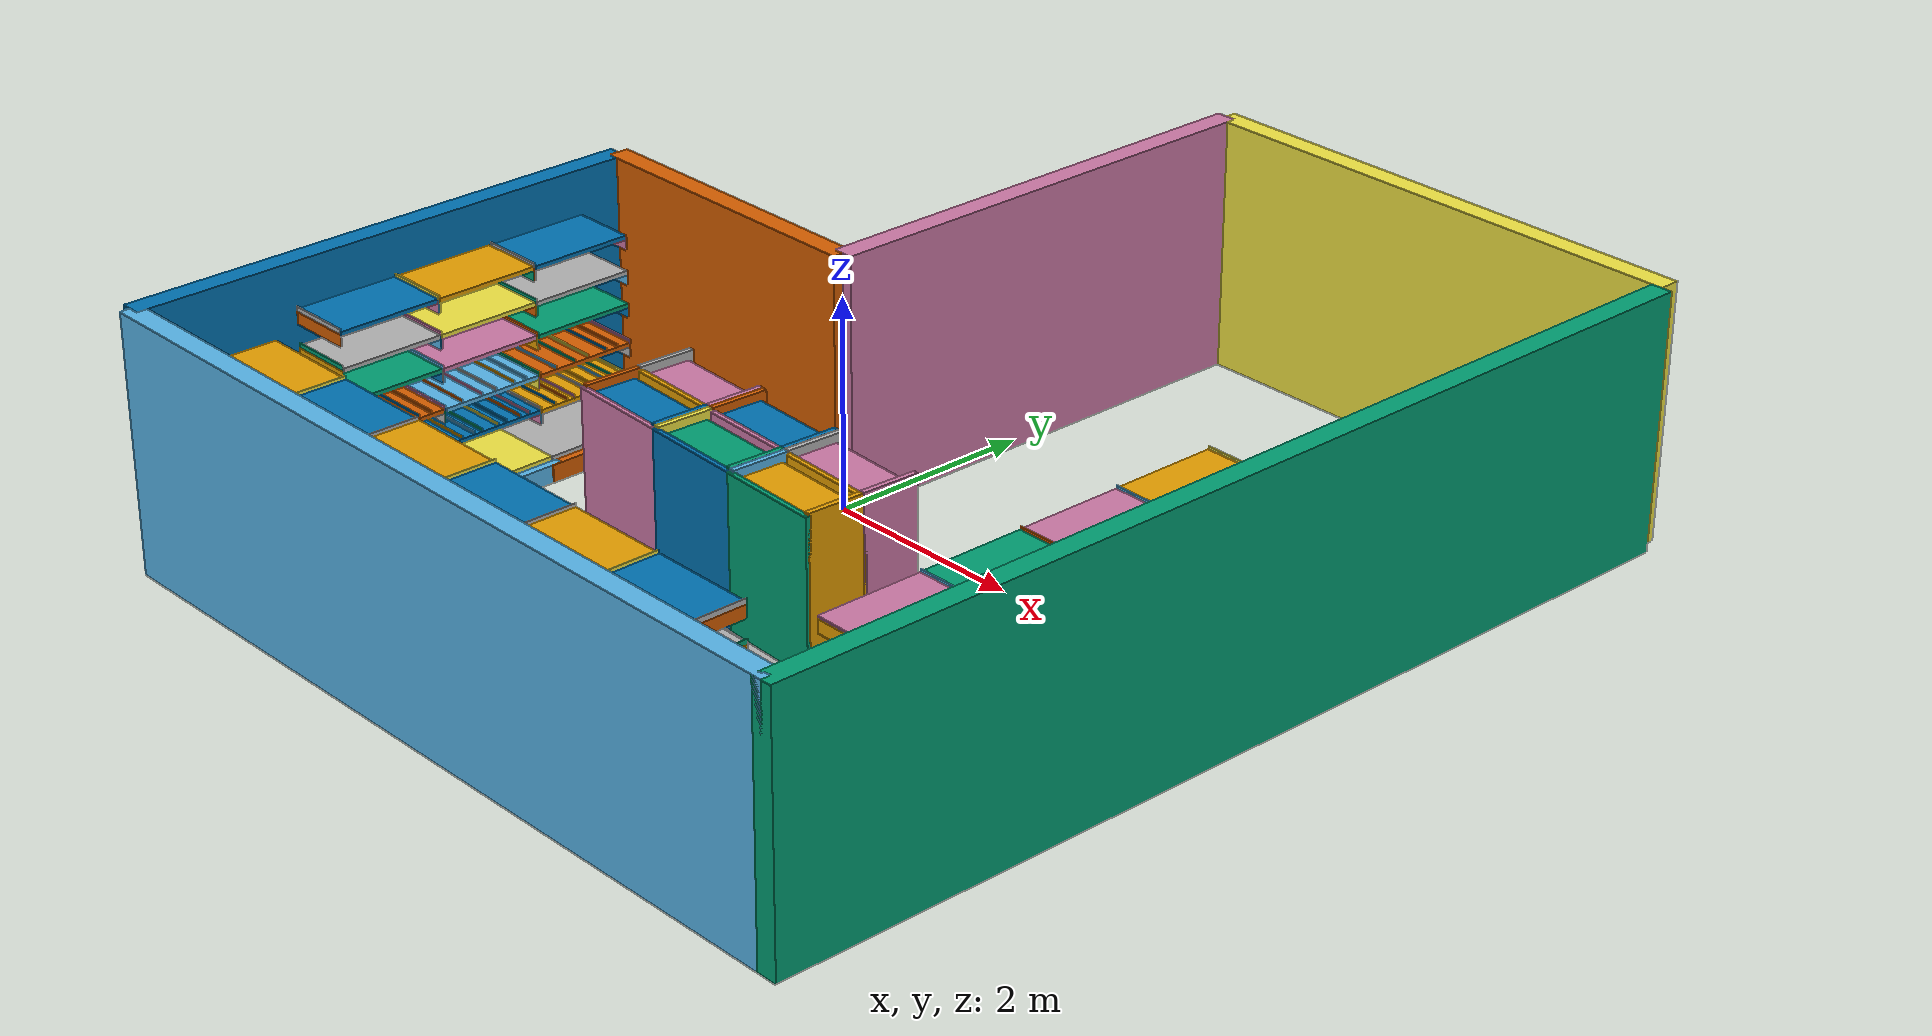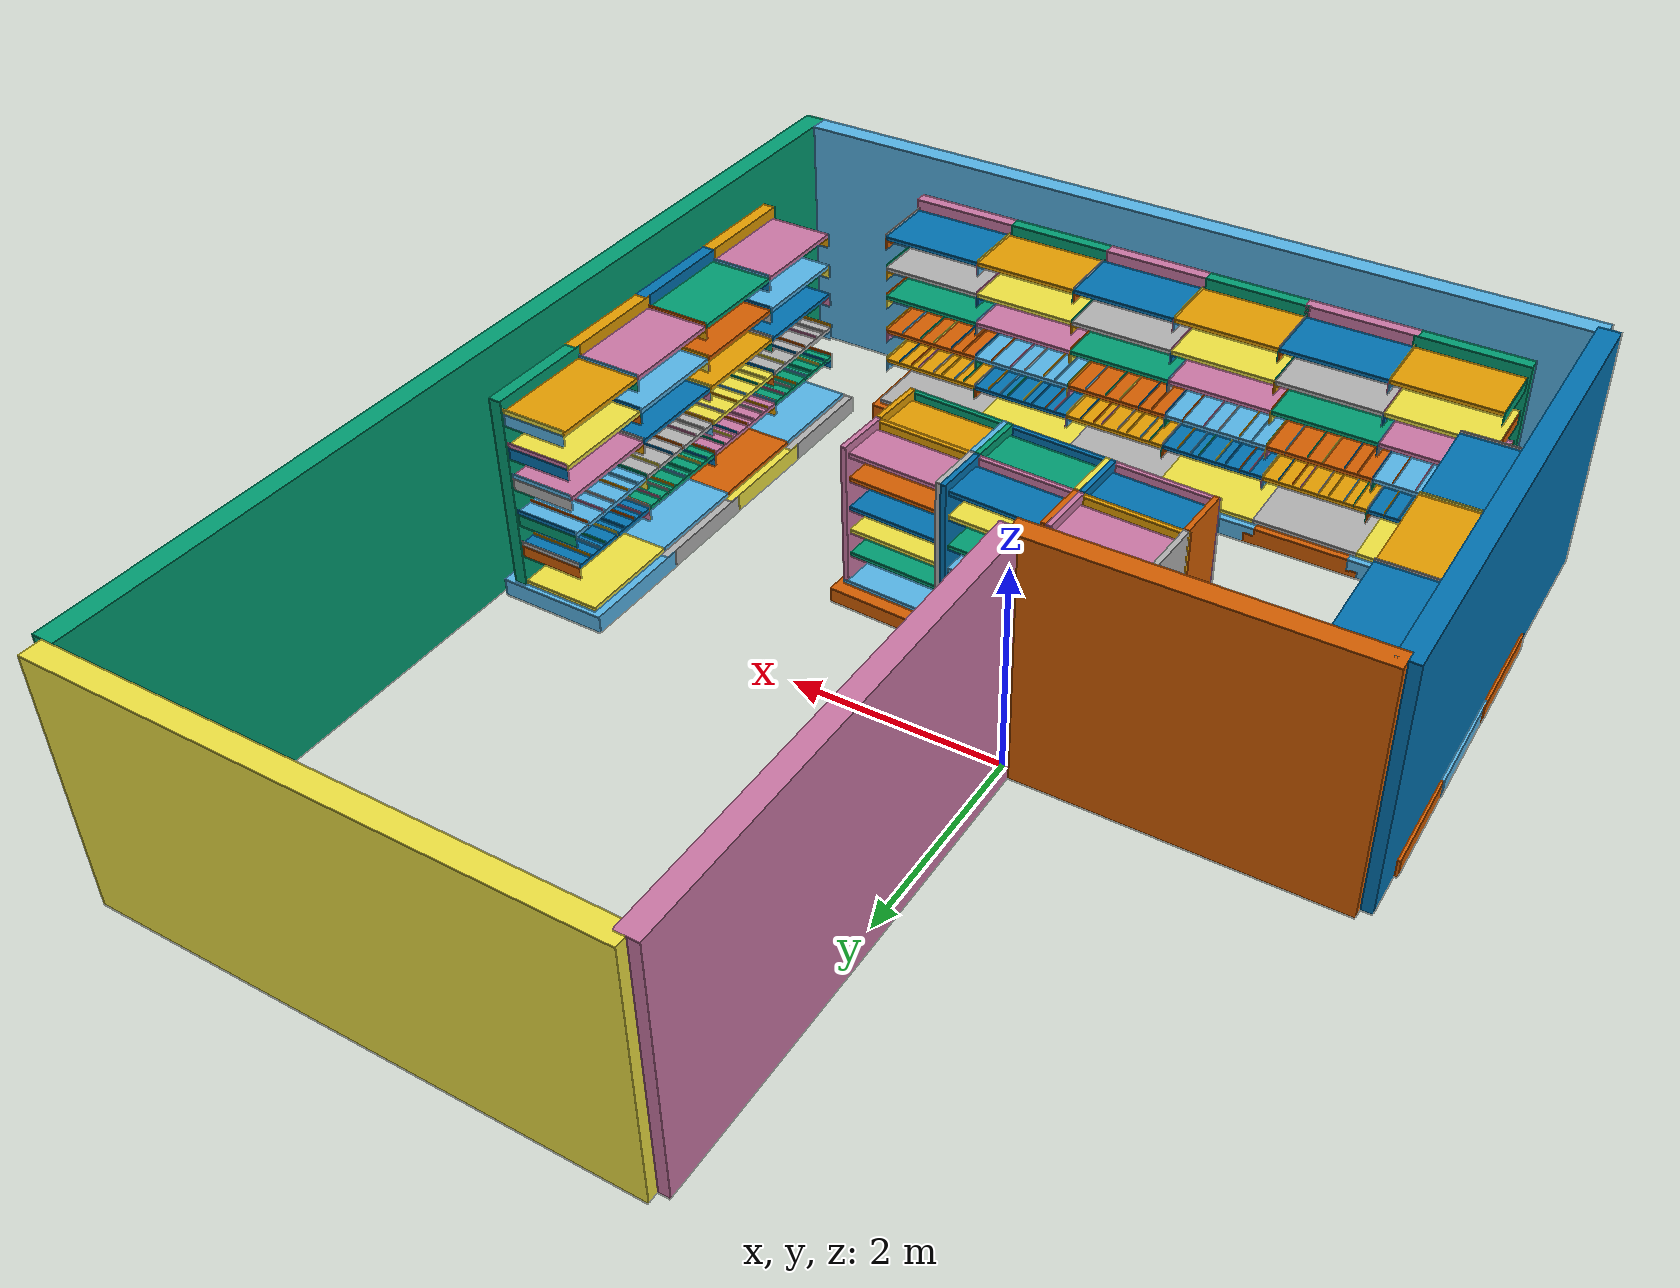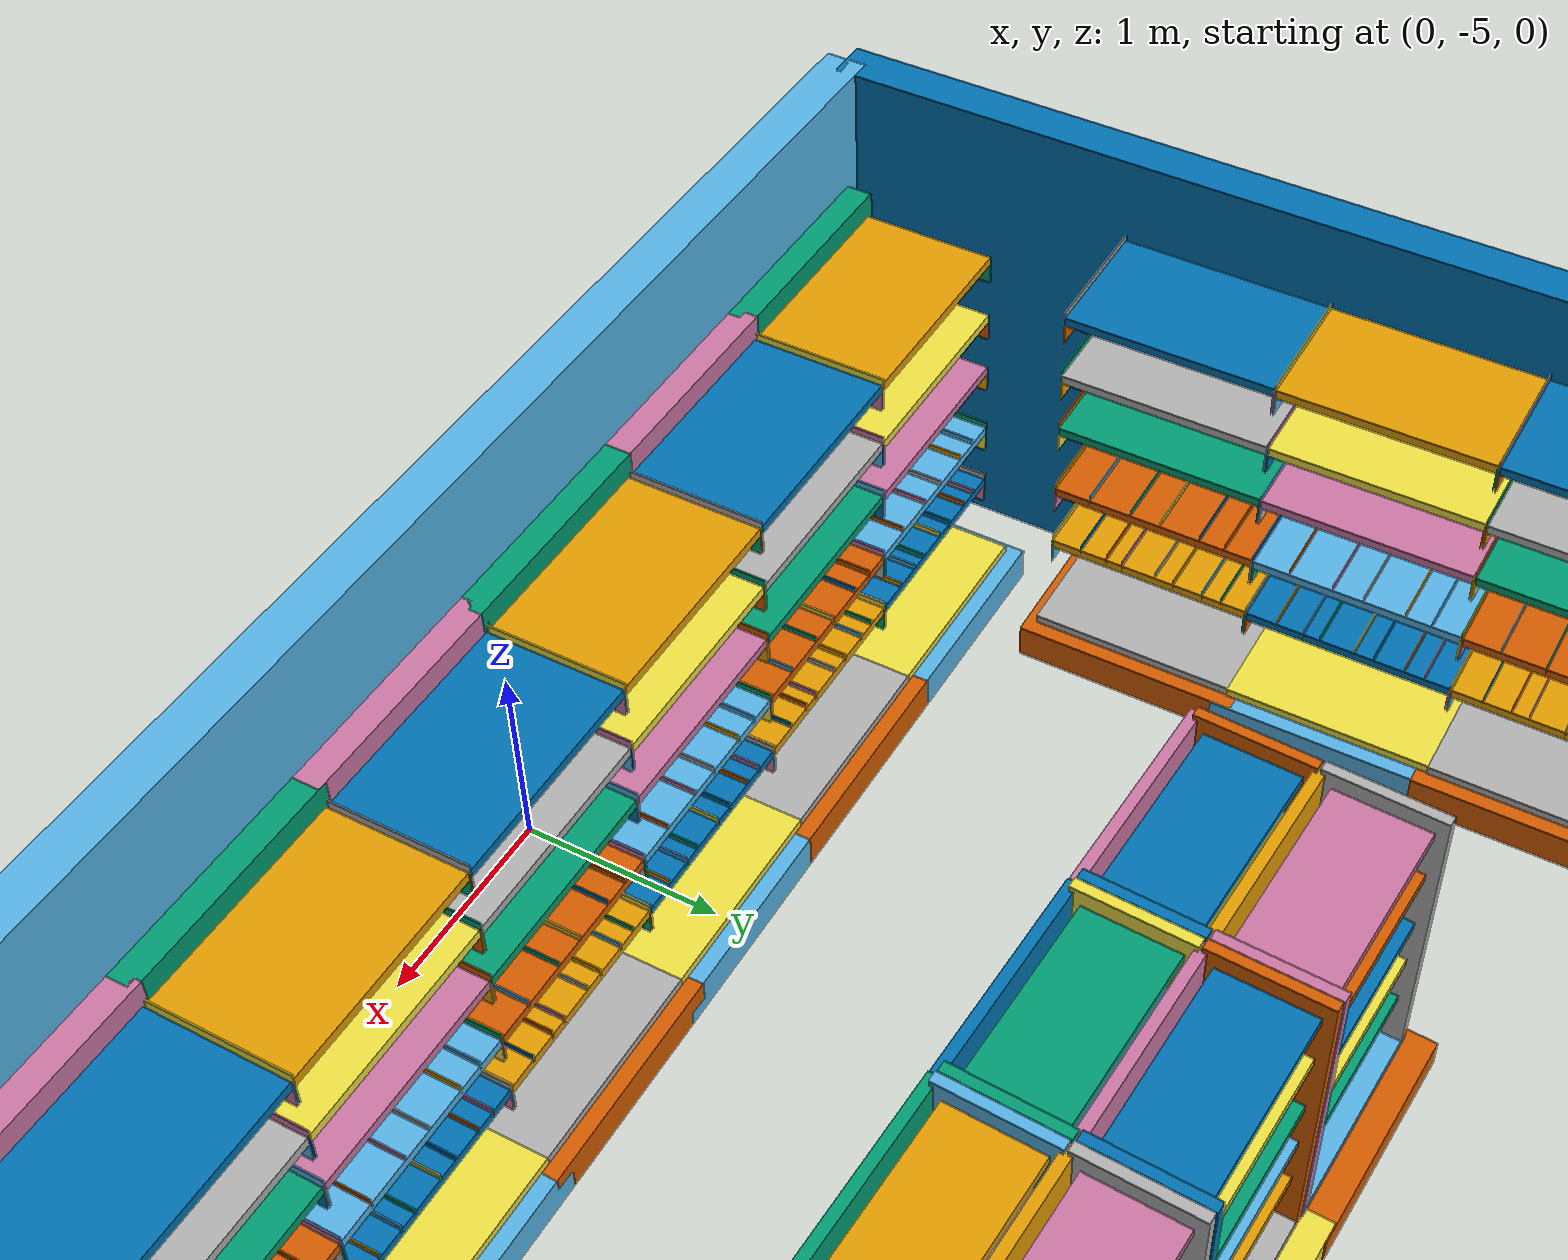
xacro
<?xml version="1.0"?>
<robot name="dm_room" xmlns:xacro="http://ros.org/wiki/xacro">

  <xacro:include filename="$(find iai_refills_lab)/urdf/dm_shelf_macros.urdf.xacro"/>
  <xacro:include filename="$(find iai_refills_lab)/urdf/dm_shelves.urdf.xacro"/>

  <!-- Left side shelves -->

  <shelf_1 parent="room_link" name="shelf_left_center_front">
    <origin xyz="4.3223 -1.2415761 0.08515" rpy="0 0 -1.5756"/>
  </shelf_1>

  <shelf_1 parent="room_link" name="shelf_left_center_back">
    <origin xyz="4.3223 -2.2415761 0.08515" rpy="0 0 -1.5756"/>
  </shelf_1>

  <shelf_1 parent="room_link" name="shelf_left_back">
    <origin xyz="4.3223 -3.2415761 0.08515" rpy="0 0 -1.5756"/>
  </shelf_1>

  <!-- Center shelves -->

  <shelf_2 parent="room_link" name="shelf_center_front_middle">
    <origin xyz="0.75 -1.4 0.08515" rpy="0 0 3.09652"/>
  </shelf_2>

  <shelf_2 parent="room_link" name="shelf_center_front_right">
    <origin xyz="-0.25 -1.35 0.08515" rpy="0 0 3.09652"/>
  </shelf_2>

  <shelf_2 parent="room_link" name="shelf_center_back_left">
    <origin xyz="1.73 -2.0 0.08515" rpy="0 0 -3.18666530718"/>
  </shelf_2>

  <shelf_2 parent="room_link" name="shelf_center_back_middle">
    <origin xyz="0.73 -1.95 0.08515" rpy="0 0 -3.18666530718"/>
  </shelf_2>

  <shelf_2 parent="room_link" name="shelf_center_back_right">
    <origin xyz="-0.27 -1.9 0.08515" rpy="0 0 -3.18666530718"/>
  </shelf_2>

  <!-- Back shelves -->
  <shelf_1 parent="room_link" name="shelf_back_1">
    <origin xyz="3 -4.3 0.08515" rpy="0 0 ${pi}"/>
  </shelf_1>

  <shelf_1 parent="room_link" name="shelf_back_2">
    <origin xyz="2 -4.3 0.08515" rpy="0 0 ${pi}"/>
  </shelf_1>

  <shelf_1 parent="room_link" name="shelf_back_3">
    <origin xyz="1 -4.3 0.08515" rpy="0 0 ${pi}"/>
  </shelf_1>

  <shelf_1 parent="room_link" name="shelf_back_4">
    <origin xyz="0 -4.3 0.08515" rpy="0 0 ${pi}"/>
  </shelf_1>

  <shelf_1 parent="room_link" name="shelf_back_5">
    <origin xyz="-1 -4.3 0.08515" rpy="0 0 ${pi}"/>
  </shelf_1>

  <shelf_1 parent="room_link" name="shelf_back_6">
    <origin xyz="-2 -4.3 0.08515" rpy="0 0 ${pi}"/>
  </shelf_1>

  <!--Right side shelves -->
  <shelf_1 parent="room_link" name="shelf_right_front">
    <origin xyz="-2.6 -1.0 0.08515" rpy="0 0 1.5756"/>
  </shelf_1>

  <shelf_1 parent="room_link" name="shelf_right_center">
    <origin xyz="-2.6 -2.0 0.08515" rpy="0 0 1.5756"/>
  </shelf_1>

  <shelf_1 parent="room_link" name="shelf_right_back">
    <origin xyz="-2.6 -3.0 0.08515" rpy="0 0 1.5756"/>
  </shelf_1>

  <!-- xacro:walls -->
  <xacro:property name="wall_thickness" value="0.2" />
  <xacro:property name="wall_height" value="2.4" />
  <wall parent="room_link" name="back_wall"
        size="8.0 ${wall_thickness} ${wall_height}">
    <origin xyz="1.0 -5.0 ${wall_height/2}" rpy="0 0 0"/>
  </wall>
  <wall parent="room_link" name="left_wall"
        size="${wall_thickness} 9.6 ${wall_height}">
    <origin xyz="5.0 -0.3 ${wall_height/2}" rpy="0 0 0"/>
  </wall>
  <wall parent="room_link" name="front_wall"
        size="5.0 ${wall_thickness} ${wall_height}">
    <origin xyz="2.5 4.6 ${wall_height/2}" rpy="0 0 0"/>
  </wall>
  <wall parent="room_link" name="right_wall"
        size="${wall_thickness} 5.0 ${wall_height}">
    <origin xyz="-3.0 -2.5 ${wall_height/2}" rpy="0 0 0"/>
  </wall>
  <wall parent="room_link" name="back_corner_wall"
        size="3.0 ${wall_thickness} ${wall_height}">
    <origin xyz="-1.5 0.0 ${wall_height/2}" rpy="0 0 0"/>
  </wall>
  <wall parent="room_link" name="right_corner_wall"
        size="${wall_thickness} 4.6 ${wall_height}">
    <origin xyz="0 2.3 ${wall_height/2}" rpy="0 0 0"/>
  </wall>
</robot>

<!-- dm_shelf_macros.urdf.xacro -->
<robot name="dm_shelf_macros" xmlns:xacro="http://ros.org/wiki/xacro">

  <xacro:macro name="divider_link" params="parent name *origin">
    <link name="${name}_link">
      <visual>
        <geometry>
          <box size="0.004 0.65 0.05"/>
        </geometry>
      </visual>
      <collision>
        <geometry>
          <box size="0.004 0.65 0.05"/>
        </geometry>
      </collision>
      <inertial>
        <mass value="1."/>
        <inertia ixx="0.1" ixy="0.1" ixz="0.1" iyy="0.1" iyz="0.1" izz="0.1"/>
        <origin rpy="0 0 0" xyz="0.00312 0 0.11152"/>
      </inertial>
    </link>

    <joint type="fixed" name="${name}_joint">
      <xacro:insert_block name="origin"/>
      <parent link="${parent}"/>
      <child link="${name}_link"/>
    </joint>
  </xacro:macro>

  <xacro:macro name="shelf_divider" params="parent name dist1 dist2 dist3 dist4 dist5 dist6 dist7 dist8 dist9">
    <divider_link parent="${parent}" name="${name}_divider_1">
      <origin xyz="-0.495 0 0.024"/>
    </divider_link>

    <divider_link parent="${parent}" name="${name}_divider_2">
      <origin xyz="${-0.495 + dist1} 0 0.024"/>
    </divider_link>

    <divider_link parent="${parent}" name="${name}_divider_3">
      <origin xyz="${-0.495 + dist1 + dist2} 0 0.024"/>
    </divider_link>

    <divider_link parent="${parent}" name="${name}_divider_4">
      <origin xyz="${-0.495 + dist1 + dist2 + dist3} 0 0.024"/>
    </divider_link>

    <divider_link parent="${parent}" name="${name}_divider_5">
      <origin xyz="${-0.495 + dist1 + dist2 + dist3 + dist4} 0 0.024"/>
    </divider_link>

    <divider_link parent="${parent}" name="${name}_divider_6">
      <origin xyz="${-0.495 + dist1 + dist2 + dist3 + dist4 + dist5} 0 0.024"/>
    </divider_link>

    <divider_link parent="${parent}" name="${name}_divider_7">
      <origin xyz="${-0.495 + dist1 + dist2 + dist3 + dist4 + dist5 + dist6} 0 0.024"/>
    </divider_link>

    <divider_link parent="${parent}" name="${name}_divider_8">
      <origin xyz="${-0.495 + dist1 + dist2 + dist3 + dist4 + dist5 + dist6 + dist7} 0 0.024"/>
    </divider_link>

    <divider_link parent="${parent}" name="${name}_divider_9">
      <origin xyz="${-0.495 + dist1 + dist2 + dist3 + dist4 + dist5 + dist6 + dist7 + dist8} 0 0.024"/>
    </divider_link>

    <divider_link parent="${parent}" name="${name}_divider_10">
      <origin xyz="${-0.495 + dist1 + dist2 + dist3 + dist4 + dist5 + dist6 + dist7 + dist8 + dist9} 0 0.024"/>
    </divider_link>
  </xacro:macro>

  <xacro:macro name="shelf_1_level" params="name parent *origin dist1 dist2 dist3 dist4 dist5 dist6 dist7 dist8 dist9">
    <link name="${name}_link">
      <visual>
        <geometry>
          <box size="0.988 0.65 0.043"/>
        </geometry>
      </visual>
      <collision>
        <geometry>
          <box size="0.988 0.65 0.043"/>
        </geometry>
      </collision>
      <inertial>
        <mass value="1."/>
        <inertia ixx="0.1" ixy="0.1" ixz="0.1" iyy="0.1" iyz="0.1" izz="0.1"/>
        <origin rpy="0 0 0" xyz="0.00312 0 0.11152"/>
      </inertial>
    </link>

    <link name="${name}_left_support_link">
      <visual>
        <geometry>
          <box size="0.004 0.65 0.12"/>
        </geometry>
      </visual>
      <collision>
        <geometry>
          <box size="0.004 0.65 0.12"/>
        </geometry>
      </collision>
      <inertial>
        <mass value="1."/>
        <inertia ixx="0.1" ixy="0.1" ixz="0.1" iyy="0.1" iyz="0.1" izz="0.1"/>
        <origin rpy="0 0 0" xyz="0.00312 0 0.11152"/>
      </inertial>
    </link>

    <link name="${name}_right_support_link">
      <visual>
        <geometry>
          <box size="0.004 0.65 0.12"/>
        </geometry>
      </visual>
      <collision>
        <geometry>
          <box size="0.004 0.65 0.12"/>
        </geometry>
      </collision>
      <inertial>
        <mass value="1."/>
        <inertia ixx="0.1" ixy="0.1" ixz="0.1" iyy="0.1" iyz="0.1" izz="0.1"/>
        <origin rpy="0 0 0" xyz="0.00312 0 0.11152"/>
      </inertial>
    </link>

    <joint type="fixed" name="${name}_joint">
      <xacro:insert_block name="origin"/>
      <parent link="${parent}"/>
      <child link="${name}_link"/>
    </joint>

    <joint type="fixed" name="${name}_right_support_joint">
      <origin xyz="0.494 0 -0.06"/>
      <parent link="${name}_link"/>
      <child link="${name}_right_support_link"/>
    </joint>

    <joint type="fixed" name="${name}_left_support_joint">
      <origin xyz="-0.494 0 -0.06"/>
      <parent link="${name}_link"/>
      <child link="${name}_left_support_link"/>
    </joint>

    <xacro:shelf_divider parent="${name}_link" name="${name}" dist1="${dist1}" dist2="${dist2}" dist3="${dist3}" dist4="${dist4}" dist5="${dist5}" dist6="${dist6}" dist7="${dist7}" dist8="${dist8}" dist9="${dist9}" />
  </xacro:macro>

  <xacro:macro name="shelf_1" params="*origin parent name">
    <link name="${name}_base">
      <visual>
        <geometry>
          <box size="1.1 1.05 0.173"/>
        </geometry>
      </visual>
      <collision>
        <geometry>
          <box size="1.1 1.05 0.173"/>
        </geometry>
      </collision>
      <inertial>
        <mass value="1."/>
        <inertia ixx="0.1" ixy="0.1" ixz="0.1" iyy="0.1" iyz="0.1" izz="0.1"/>
        <origin rpy="0 0 0" xyz="0.00312 0 0.11152"/>
      </inertial>
    </link>

    <joint type="fixed" name="${name}_joint">
      <xacro:insert_block name="origin"/>
      <parent link="${parent}"/>
      <child link="${name}_base"/>
    </joint>

    <link name="${name}_back">
      <visual>
        <geometry>
          <box size="1.04 0.12 2"/>
        </geometry>
      </visual>
      <collision>
        <geometry>
          <box size="1.04 0.12 2"/>
        </geometry>
      </collision>
      <inertial>
        <mass value="1."/>
        <inertia ixx="0.1" ixy="0.1" ixz="0.1" iyy="0.1" iyz="0.1" izz="0.1"/>
        <origin rpy="0 0 0" xyz="0.00312 0 0.11152"/>
      </inertial>
    </link>

    <joint type="fixed" name="${name}_base_back_joint">
      <origin xyz="0 0.365 1"/>
      <parent link="${name}_base"/>
      <child link="${name}_back"/>
    </joint>

    <link name="${name}_level_0_link">
      <visual>
        <geometry>
          <box size="1 0.78 0.043"/>
        </geometry>
      </visual>
      <collision>
        <geometry>
          <box size="1 0.78 0.043"/>
        </geometry>
      </collision>
      <inertial>
        <mass value="1."/>
        <inertia ixx="0.1" ixy="0.1" ixz="0.1" iyy="0.1" iyz="0.1" izz="0.1"/>
        <origin rpy="0 0 0" xyz="0.00312 0 0.11152"/>
      </inertial>
    </link>

    <joint type="fixed" name="${name}_level_0_joint">
      <origin xyz="0 -0.06 0.10665"/>
      <parent link="${name}_base"/>
      <child link="${name}_level_0_link"/>
    </joint>

    <shelf_1_level name="${name}_level_1" parent="${name}_base" dist1="0.15" dist2="0.133" dist3="0.082" dist4="0.167" dist5="0.095" dist6="0.148" dist7="0.095" dist8="0.125" dist9="0" >
      <origin xyz="0 0 0.50965" />
    </shelf_1_level>

    <shelf_1_level name="${name}_level_2" parent="${name}_base" dist1="0.177" dist2="0.208" dist3="0.147" dist4="0.20" dist5="0.124" dist6="0.14" dist7="0" dist8="0" dist9="0" >
      <origin xyz="0 0 0.84465" />
    </shelf_1_level>

    <shelf_1_level name="${name}_level_3" parent="${name}_base" dist1="0" dist2="0" dist3="0" dist4="0" dist5="0" dist6="0" dist7="0" dist8="0" dist9="0" >
      <origin xyz="0 0 1.22265" />
    </shelf_1_level>

    <shelf_1_level name="${name}_level_4" parent="${name}_base" dist1="0" dist2="0" dist3="0" dist4="0" dist5="0" dist6="0" dist7="0" dist8="0" dist9="0" >
      <origin xyz="0 0 1.53565" />
    </shelf_1_level>

    <shelf_1_level name="${name}_level_5" parent="${name}_base" dist1="0" dist2="0" dist3="0" dist4="0" dist5="0" dist6="0" dist7="0" dist8="0" dist9="0" >
      <origin xyz="0 0 1.86865" />
    </shelf_1_level>
  </xacro:macro>

  <!-- Shelf 2 -->
  <xacro:macro name="shelf_2_level" params="name parent *origin">
    <link name="shelf_2_${name}_link">
      <visual>
        <geometry>
          <box size="0.992 0.435 0.043"/>
        </geometry>
      </visual>
      <collision>
        <geometry>
          <box size="0.992 0.435 0.043"/>
        </geometry>
      </collision>
      <inertial>
        <mass value="1."/>
        <inertia ixx="0.1" ixy="0.1" ixz="0.1" iyy="0.1" iyz="0.1" izz="0.1"/>
        <origin rpy="0 0 0" xyz="0.00312 0 0.11152"/>
      </inertial>
    </link>

    <joint type="fixed" name="shelf_2_${name}_joint">
      <xacro:insert_block name="origin"/>
      <parent link="${parent}"/>
      <child link="shelf_2_${name}_link"/>
    </joint>
  </xacro:macro>

  <xacro:macro name="shelf_2" params="*origin parent name">
    <link name="${name}_base">
      <visual>
        <geometry>
          <box size="1.1 0.8 0.145"/>
        </geometry>
      </visual>
      <collision>
        <geometry>
          <box size="1.1 0.8 0.145"/>
        </geometry>
      </collision>
      <inertial>
        <mass value="1."/>
        <inertia ixx="0.1" ixy="0.1" ixz="0.1" iyy="0.1" iyz="0.1" izz="0.1"/>
        <origin rpy="0 0 0" xyz="0.00312 0 0.11152"/>
      </inertial>
    </link>

    <joint type="fixed" name="${name}_joint">
      <xacro:insert_block name="origin"/>
      <parent link="${parent}"/>
      <child link="${name}_base"/>
    </joint>

    <link name="${name}_left_side">
      <visual>
        <geometry>
          <box size="0.05 0.54 1.6"/>
        </geometry>
      </visual>
      <collision>
        <geometry>
          <box size="0.05 0.54 1.6"/>
        </geometry>
      </collision>
      <inertial>
        <mass value="1."/>
        <inertia ixx="0.1" ixy="0.1" ixz="0.1" iyy="0.1" iyz="0.1" izz="0.1"/>
        <origin rpy="0 0 0" xyz="0.00312 0 0.11152"/>
      </inertial>
    </link>

    <joint type="fixed" name="${name}_base_left_joint">
      <origin xyz="-0.475 0 0.7225"/>
      <parent link="${name}_base"/>
      <child link="${name}_left_side"/>
    </joint>

    <link name="${name}_right_side">
      <visual>
        <geometry>
          <box size="0.05 0.54 1.6"/>
        </geometry>
      </visual>
      <collision>
        <geometry>
          <box size="0.05 0.54 1.6"/>
        </geometry>
      </collision>
      <inertial>
        <mass value="1."/>
        <inertia ixx="0.1" ixy="0.1" ixz="0.1" iyy="0.1" iyz="0.1" izz="0.1"/>
        <origin rpy="0 0 0" xyz="0.00312 0 0.11152"/>
      </inertial>
    </link>

    <joint type="fixed" name="${name}_base_right_joint">
      <origin xyz="0.475 0 0.7225"/>
      <parent link="${name}_base"/>
      <child link="${name}_right_side"/>
    </joint>

    <link name="${name}_back">
      <visual>
        <geometry>
          <box size="1 0.05 1.45"/>
        </geometry>
      </visual>
      <collision>
        <geometry>
          <box size="1 0.05 1.45"/>
        </geometry>
      </collision>
      <inertial>
        <mass value="1."/>
        <inertia ixx="0.1" ixy="0.1" ixz="0.1" iyy="0.1" iyz="0.1" izz="0.1"/>
        <origin rpy="0 0 0" xyz="0.00312 0 0.11152"/>
      </inertial>
    </link>

    <joint type="fixed" name="${name}_base_back_joint">
      <origin xyz="0 0.275 0.7725"/>
      <parent link="${name}_base"/>
      <child link="${name}_back"/>
    </joint>

    <link name="${name}_level_0_link">
      <visual>
        <geometry>
          <box size="0.992 0.54 0.043"/>
        </geometry>
      </visual>
      <collision>
        <geometry>
          <box size="0.992 0.54 0.043"/>
        </geometry>
      </collision>
      <inertial>
        <mass value="1."/>
        <inertia ixx="0.1" ixy="0.1" ixz="0.1" iyy="0.1" iyz="0.1" izz="0.1"/>
        <origin rpy="0 0 0" xyz="0.00312 0 0.11152"/>
      </inertial>
    </link>

    <joint type="fixed" name="${name}_level_0_joint">
      <origin xyz="0 0 0.0925"/>
      <parent link="${name}_base"/>
      <child link="${name}_level_0_link"/>
    </joint>

    <shelf_2_level name="${name}_level_1" parent="${name}_base">
      <origin xyz="0 0.0 0.374"/>
    </shelf_2_level>

    <shelf_2_level name="${name}_level_2" parent="${name}_base">
      <origin xyz="0 0.0 0.624"/>
    </shelf_2_level>

    <shelf_2_level name="${name}_level_3" parent="${name}_base">
      <origin xyz="0 0.0 0.864"/>
    </shelf_2_level>

    <shelf_2_level name="${name}_level_4" parent="${name}_base">
      <origin xyz="0 0.0 1.17"/>
    </shelf_2_level>

    <shelf_2_level name="${name}_level_5" parent="${name}_base">
      <origin xyz="0 0.0 1.42"/>
    </shelf_2_level>
  </xacro:macro>

  <xacro:macro name="wall" params="parent name size *origin">
    <link name="${name}_link">
      <visual>
        <geometry>
          <box size="${size}"/>
        </geometry>
      </visual>
      <collision>
        <geometry>
          <box size="${size}"/>
        </geometry>
      </collision>
      <inertial>
        <mass value="1."/>
        <inertia ixx="0.1" ixy="0.1" ixz="0.1" iyy="0.1" iyz="0.1" izz="0.1"/>
        <origin rpy="0 0 0" xyz="0.00312 0 0.11152"/>
      </inertial>
    </link>

    <joint type="fixed" name="${name}_joint">
      <xacro:insert_block name="origin"/>
      <parent link="${parent}"/>
      <child link="${name}_link"/>
    </joint>
  </xacro:macro>
</robot>

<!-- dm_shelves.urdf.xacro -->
<robot name="dm_shelves" xmlns:xacro="http://ros.org/wiki/xacro">

  <xacro:include filename="$(find iai_refills_lab)/urdf/dm_shelf_macros.urdf.xacro"/>

  <link name="room_link"/>

  <xacro:shelf_1 parent="room_link" name="shelf_1">
    <origin xyz="4.3223 -0.2415761 0.08515" rpy="0 0 -1.5756"/>
  </xacro:shelf_1>

  <xacro:shelf_2 parent="room_link" name="shelf_2">
    <origin xyz="1.75 -1.45 0.08515" rpy="0 0 3.09652"/>
  </xacro:shelf_2>
</robot>
